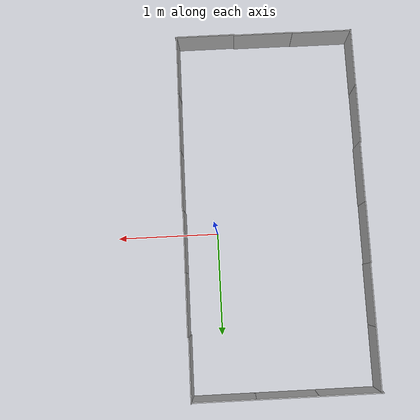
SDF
<sdf version="1.10">
 <world name="simple_map">
  <physics type="ode">
   <max_step_size>0.0030000000000000001</max_step_size>
   <real_time_factor>1</real_time_factor>
   <real_time_update_rate>1000</real_time_update_rate>
  </physics>
  <plugin name="gz::sim::systems::Physics" filename="gz-sim-physics-system"/>
  <plugin name="gz::sim::systems::UserCommands" filename="gz-sim-user-commands-system"/>
  <plugin name="gz::sim::systems::SceneBroadcaster" filename="gz-sim-scene-broadcaster-system"/>
  <plugin name="gz::sim::systems::Contact" filename="gz-sim-contact-system"/>
  <plugin name="gz::sim::systems::Sensors" filename="gz-sim-sensors-system"/>
  <scene>
   <ambient>1 1 1 1</ambient>
   <background>0.300000012 0.699999988 0.899999976 1</background>
   <shadows>false</shadows>
   <grid>false</grid>
  </scene>
  <gravity>0 0 -9.8000000000000007</gravity>
  <magnetic_field>5.5644999999999998e-06 2.2875799999999999e-05 -4.2388400000000002e-05</magnetic_field>
  <atmosphere type="adiabatic"/>
  <model name="ground_plane">
   <static>true</static>
   <link name="link">
    <collision name="collision">
     <geometry><plane><normal>0 0 1</normal><size>1 1</size></plane></geometry>
    </collision>
    <inertial>
     <mass>1</mass>
     <inertia><ixx>1</ixx><ixy>0</ixy><ixz>0</ixz><iyy>1</iyy><iyz>0</iyz><izz>1</izz></inertia>
    </inertial>
   </link>
  </model>
  <model name="thin_box">
   <static>true</static>
   <link name="link">
    <collision name="collision">
     <geometry><box><size>0.59999999999999998 0.01 0.29999999999999999</size></box></geometry>
    </collision>
    <visual name="visual">
     <geometry><box><size>0.59999999999999998 0.01 0.29999999999999999</size></box></geometry>
     <material><ambient>0.5 0.5 0.5 1</ambient><diffuse>0.699999988 0.699999988 0.699999988 1</diffuse></material>
    </visual>
    <inertial>
     <mass>1</mass>
     <inertia><ixx>1</ixx><ixy>0</ixy><ixz>0</ixz><iyy>1</iyy><iyz>0</iyz><izz>1</izz></inertia>
    </inertial>
   </link>
   <pose>0.033284701406955719 -2.0011242449283602 0.15000000596046448 0 0 0</pose>
  </model>
  <model name="thin_box_1">
   <static>true</static>
   <link name="link">
    <collision name="collision">
     <geometry><box><size>0.59999999999999998 0.01 0.29999999999999999</size></box></geometry>
    </collision>
    <visual name="visual">
     <geometry><box><size>0.59999999999999998 0.01 0.29999999999999999</size></box></geometry>
     <material><ambient>0.5 0.5 0.5 1</ambient><diffuse>0.699999988 0.699999988 0.699999988 1</diffuse></material>
    </visual>
    <inertial>
     <mass>1</mass>
     <inertia><ixx>1</ixx><ixy>0</ixy><ixz>0</ixz><iyy>1</iyy><iyz>0</iyz><izz>1</izz></inertia>
    </inertial>
   </link>
   <pose>0.32062825560569763 -1.701523949438706 0.15000000596046448 0 0 1.5708000357176291</pose>
  </model>
  <model name="thin_box_2">
   <static>true</static>
   <link name="link">
    <collision name="collision">
     <geometry><box><size>0.59999999999999998 0.01 0.29999999999999999</size></box></geometry>
    </collision>
    <visual name="visual">
     <geometry><box><size>0.59999999999999998 0.01 0.29999999999999999</size></box></geometry>
     <material><ambient>0.5 0.5 0.5 1</ambient><diffuse>0.699999988 0.699999988 0.699999988 1</diffuse></material>
    </visual>
    <inertial>
     <mass>1</mass>
     <inertia><ixx>1</ixx><ixy>0</ixy><ixz>0</ixz><iyy>1</iyy><iyz>0</iyz><izz>1</izz></inertia>
    </inertial>
   </link>
   <pose>-0.56193119457931329 -1.9946064087305946 0.15000000596046448 0 0 0</pose>
  </model>
  <model name="thin_box_2_1">
   <static>true</static>
   <link name="link">
    <collision name="collision">
     <geometry><box><size>0.59999999999999998 0.01 0.29999999999999999</size></box></geometry>
    </collision>
    <visual name="visual">
     <geometry><box><size>0.59999999999999998 0.01 0.29999999999999999</size></box></geometry>
     <material><ambient>0.5 0.5 0.5 1</ambient><diffuse>0.699999988 0.699999988 0.699999988 1</diffuse></material>
    </visual>
    <inertial>
     <mass>1</mass>
     <inertia><ixx>1</ixx><ixy>0</ixy><ixz>0</ixz><iyy>1</iyy><iyz>0</iyz><izz>1</izz></inertia>
    </inertial>
   </link>
   <pose>-1.1615454168149233 -1.99064576887316 0.15000000596046448 0 0 0</pose>
  </model>
  <model name="thin_box_1_1">
   <static>true</static>
   <link name="link">
    <collision name="collision">
     <geometry><box><size>0.59999999999999998 0.01 0.29999999999999999</size></box></geometry>
    </collision>
    <visual name="visual">
     <geometry><box><size>0.59999999999999998 0.01 0.29999999999999999</size></box></geometry>
     <material><ambient>0.5 0.5 0.5 1</ambient><diffuse>0.699999988 0.699999988 0.699999988 1</diffuse></material>
    </visual>
    <inertial>
     <mass>1</mass>
     <inertia><ixx>1</ixx><ixy>0</ixy><ixz>0</ixz><iyy>1</iyy><iyz>0</iyz><izz>1</izz></inertia>
    </inertial>
   </link>
   <pose>0.32167330384254456 -1.1137322187423706 0.15000000596046448 0 0 1.5708000357176291</pose>
  </model>
  <model name="thin_box_1_1_1">
   <static>true</static>
   <link name="link">
    <collision name="collision">
     <geometry><box><size>0.59999999999999998 0.01 0.29999999999999999</size></box></geometry>
    </collision>
    <visual name="visual">
     <geometry><box><size>0.59999999999999998 0.01 0.29999999999999999</size></box></geometry>
     <material><ambient>0.5 0.5 0.5 1</ambient><diffuse>0.699999988 0.699999988 0.699999988 1</diffuse></material>
    </visual>
    <inertial>
     <mass>1</mass>
     <inertia><ixx>1</ixx><ixy>0</ixy><ixz>0</ixz><iyy>1</iyy><iyz>0</iyz><izz>1</izz></inertia>
    </inertial>
   </link>
   <pose>0.32240927219390869 -0.51493185758590698 0.15000000596046448 0 0 1.5708000357176291</pose>
  </model>
  <model name="thin_box_1_1_1_1">
   <static>true</static>
   <link name="link">
    <collision name="collision">
     <geometry><box><size>0.59999999999999998 0.01 0.29999999999999999</size></box></geometry>
    </collision>
    <visual name="visual">
     <geometry><box><size>0.59999999999999998 0.01 0.29999999999999999</size></box></geometry>
     <material><ambient>0.5 0.5 0.5 1</ambient><diffuse>0.699999988 0.699999988 0.699999988 1</diffuse></material>
    </visual>
    <inertial>
     <mass>1</mass>
     <inertia><ixx>1</ixx><ixy>0</ixy><ixz>0</ixz><iyy>1</iyy><iyz>0</iyz><izz>1</izz></inertia>
    </inertial>
   </link>
   <pose>0.31643328070640564 0.084323137998580933 0.15000000596046448 0 0 1.5708000357176291</pose>
  </model>
  <model name="thin_box_1_1_1_1_1">
   <static>true</static>
   <link name="link">
    <collision name="collision">
     <geometry><box><size>0.59999999999999998 0.01 0.29999999999999999</size></box></geometry>
    </collision>
    <visual name="visual">
     <geometry><box><size>0.59999999999999998 0.01 0.29999999999999999</size></box></geometry>
     <material><ambient>0.5 0.5 0.5 1</ambient><diffuse>0.699999988 0.699999988 0.699999988 1</diffuse></material>
    </visual>
    <inertial>
     <mass>1</mass>
     <inertia><ixx>1</ixx><ixy>0</ixy><ixz>0</ixz><iyy>1</iyy><iyz>0</iyz><izz>1</izz></inertia>
    </inertial>
   </link>
   <pose>0.31606829166412354 0.68379729986190796 0.15000000596046448 0 0 1.5708000357176291</pose>
  </model>
  <model name="thin_box_1_1_1_1_1_1">
   <static>true</static>
   <link name="link">
    <collision name="collision">
     <geometry><box><size>0.59999999999999998 0.01 0.29999999999999999</size></box></geometry>
    </collision>
    <visual name="visual">
     <geometry><box><size>0.59999999999999998 0.01 0.29999999999999999</size></box></geometry>
     <material><ambient>0.5 0.5 0.5 1</ambient><diffuse>0.699999988 0.699999988 0.699999988 1</diffuse></material>
    </visual>
    <inertial>
     <mass>1</mass>
     <inertia><ixx>1</ixx><ixy>0</ixy><ixz>0</ixz><iyy>1</iyy><iyz>0</iyz><izz>1</izz></inertia>
    </inertial>
   </link>
   <pose>0.30697618631507162 1.2851725717741471 0.15000000596046448 0 0 1.5708000357176291</pose>
  </model>
  <model name="thin_box_1_2">
   <static>true</static>
   <link name="link">
    <collision name="collision">
     <geometry><box><size>0.59999999999999998 0.01 0.29999999999999999</size></box></geometry>
    </collision>
    <visual name="visual">
     <geometry><box><size>0.59999999999999998 0.01 0.29999999999999999</size></box></geometry>
     <material><ambient>0.5 0.5 0.5 1</ambient><diffuse>0.699999988 0.699999988 0.699999988 1</diffuse></material>
    </visual>
    <inertial>
     <mass>1</mass>
     <inertia><ixx>1</ixx><ixy>0</ixy><ixz>0</ixz><iyy>1</iyy><iyz>0</iyz><izz>1</izz></inertia>
    </inertial>
   </link>
   <pose>-1.4574301776871157 -1.7013857036819289 0.15000000596046448 0 0 1.5708000357176291</pose>
  </model>
  <model name="thin_box_1_2_1">
   <static>true</static>
   <link name="link">
    <collision name="collision">
     <geometry><box><size>0.59999999999999998 0.01 0.29999999999999999</size></box></geometry>
    </collision>
    <visual name="visual">
     <geometry><box><size>0.59999999999999998 0.01 0.29999999999999999</size></box></geometry>
     <material><ambient>0.5 0.5 0.5 1</ambient><diffuse>0.699999988 0.699999988 0.699999988 1</diffuse></material>
    </visual>
    <inertial>
     <mass>1</mass>
     <inertia><ixx>1</ixx><ixy>0</ixy><ixz>0</ixz><iyy>1</iyy><iyz>0</iyz><izz>1</izz></inertia>
    </inertial>
   </link>
   <pose>-1.4592819938795336 -1.1104510085799999 0.15000000596046448 0 0 1.5708000357176291</pose>
  </model>
  <model name="thin_box_1_2_1_1">
   <static>true</static>
   <link name="link">
    <collision name="collision">
     <geometry><box><size>0.59999999999999998 0.01 0.29999999999999999</size></box></geometry>
    </collision>
    <visual name="visual">
     <geometry><box><size>0.59999999999999998 0.01 0.29999999999999999</size></box></geometry>
     <material><ambient>0.5 0.5 0.5 1</ambient><diffuse>0.699999988 0.699999988 0.699999988 1</diffuse></material>
    </visual>
    <inertial>
     <mass>1</mass>
     <inertia><ixx>1</ixx><ixy>0</ixy><ixz>0</ixz><iyy>1</iyy><iyz>0</iyz><izz>1</izz></inertia>
    </inertial>
   </link>
   <pose>-1.4514623951662033 -0.51485746311000002 0.15000000596046448 0 0 1.5708000357176291</pose>
  </model>
  <model name="thin_box_1_2_1_1_1">
   <static>true</static>
   <link name="link">
    <collision name="collision">
     <geometry><box><size>0.59999999999999998 0.01 0.29999999999999999</size></box></geometry>
    </collision>
    <visual name="visual">
     <geometry><box><size>0.59999999999999998 0.01 0.29999999999999999</size></box></geometry>
     <material><ambient>0.5 0.5 0.5 1</ambient><diffuse>0.699999988 0.699999988 0.699999988 1</diffuse></material>
    </visual>
    <inertial>
     <mass>1</mass>
     <inertia><ixx>1</ixx><ixy>0</ixy><ixz>0</ixz><iyy>1</iyy><iyz>0</iyz><izz>1</izz></inertia>
    </inertial>
   </link>
   <pose>-1.4540052557095278 0.079970452499999997 0.15000000596046448 0 0 1.5708000357176291</pose>
  </model>
  <model name="thin_box_1_2_1_1_1_1">
   <static>true</static>
   <link name="link">
    <collision name="collision">
     <geometry><box><size>0.59999999999999998 0.01 0.29999999999999999</size></box></geometry>
    </collision>
    <visual name="visual">
     <geometry><box><size>0.59999999999999998 0.01 0.29999999999999999</size></box></geometry>
     <material><ambient>0.5 0.5 0.5 1</ambient><diffuse>0.699999988 0.699999988 0.699999988 1</diffuse></material>
    </visual>
    <inertial>
     <mass>1</mass>
     <inertia><ixx>1</ixx><ixy>0</ixy><ixz>0</ixz><iyy>1</iyy><iyz>0</iyz><izz>1</izz></inertia>
    </inertial>
   </link>
   <pose>-1.4481092295535172 0.67689374694000004 0.15000000596046448 0 0 1.5708000357176291</pose>
  </model>
  <model name="thin_box_1_2_1_1_1_1_1">
   <static>true</static>
   <link name="link">
    <collision name="collision">
     <geometry><box><size>0.59999999999999998 0.01 0.29999999999999999</size></box></geometry>
    </collision>
    <visual name="visual">
     <geometry><box><size>0.59999999999999998 0.01 0.29999999999999999</size></box></geometry>
     <material><ambient>0.5 0.5 0.5 1</ambient><diffuse>0.699999988 0.699999988 0.699999988 1</diffuse></material>
    </visual>
    <inertial>
     <mass>1</mass>
     <inertia><ixx>1</ixx><ixy>0</ixy><ixz>0</ixz><iyy>1</iyy><iyz>0</iyz><izz>1</izz></inertia>
    </inertial>
   </link>
   <pose>-1.4481101036071777 1.2745676040649414 0.15000000596046448 0 0 1.5708000357176291</pose>
  </model>
  <model name="thin_box_3">
   <static>true</static>
   <link name="link">
    <collision name="collision">
     <geometry><box><size>0.59999999999999998 0.01 0.29999999999999999</size></box></geometry>
    </collision>
    <visual name="visual">
     <geometry><box><size>0.59999999999999998 0.01 0.29999999999999999</size></box></geometry>
     <material><ambient>0.5 0.5 0.5 1</ambient><diffuse>0.699999988 0.699999988 0.699999988 1</diffuse></material>
    </visual>
    <inertial>
     <mass>1</mass>
     <inertia><ixx>1</ixx><ixy>0</ixy><ixz>0</ixz><iyy>1</iyy><iyz>0</iyz><izz>1</izz></inertia>
    </inertial>
   </link>
   <pose>0.0071601931802384167 1.5707499176999999 0.15000000596046448 0 0 0</pose>
  </model>
  <model name="thin_box_3_1">
   <static>true</static>
   <link name="link">
    <collision name="collision">
     <geometry><box><size>0.59999999999999998 0.01 0.29999999999999999</size></box></geometry>
    </collision>
    <visual name="visual">
     <geometry><box><size>0.59999999999999998 0.01 0.29999999999999999</size></box></geometry>
     <material><ambient>0.5 0.5 0.5 1</ambient><diffuse>0.699999988 0.699999988 0.699999988 1</diffuse></material>
    </visual>
    <inertial>
     <mass>1</mass>
     <inertia><ixx>1</ixx><ixy>0</ixy><ixz>0</ixz><iyy>1</iyy><iyz>0</iyz><izz>1</izz></inertia>
    </inertial>
   </link>
   <pose>-0.58045270132750693 1.5707499176999999 0.15000000596046448 0 0 0</pose>
  </model>
  <model name="thin_box_3_1_1">
   <static>true</static>
   <link name="link">
    <collision name="collision">
     <geometry><box><size>0.59999999999999998 0.01 0.29999999999999999</size></box></geometry>
    </collision>
    <visual name="visual">
     <geometry><box><size>0.59999999999999998 0.01 0.29999999999999999</size></box></geometry>
     <material><ambient>0.5 0.5 0.5 1</ambient><diffuse>0.699999988 0.699999988 0.699999988 1</diffuse></material>
    </visual>
    <inertial>
     <mass>1</mass>
     <inertia><ixx>1</ixx><ixy>0</ixy><ixz>0</ixz><iyy>1</iyy><iyz>0</iyz><izz>1</izz></inertia>
    </inertial>
   </link>
   <pose>-1.1693400677144978 1.5707499176999999 0.15000000596046448 0 0 0</pose>
  </model>
 </world>
</sdf>
